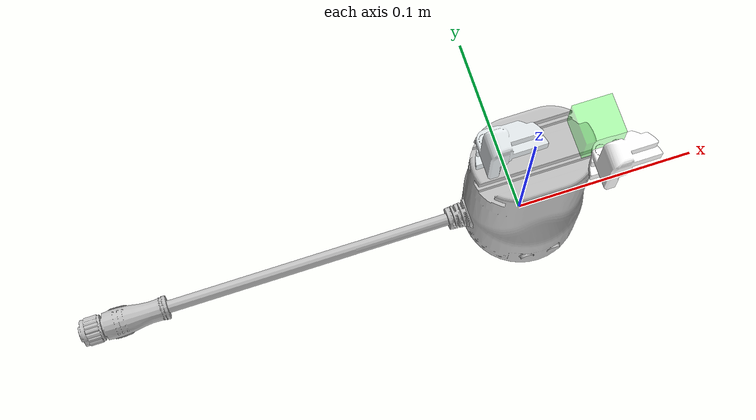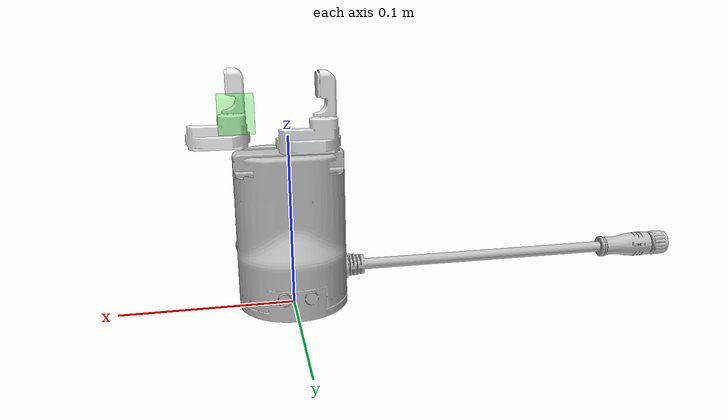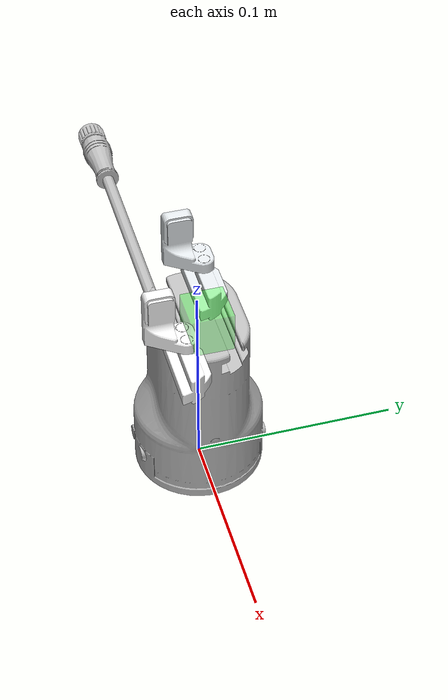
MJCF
<mujoco model="pgc50new">
  <compiler angle="radian"/>

  <option integrator="implicitfast"/>

  <asset>

    <material name="white" rgba="1 1 1 1"/>
    <material name="gray" rgba="0.753 0.753 0.753 1"/>
    <material name="black" rgba="0.149 0.149 0.149 1"/>

    <mesh name="base_link" content_type="model/stl" file="base_link.STL"/>
    <mesh name="finger1_link" content_type="model/stl" file="finger1_link.STL"/>
    <mesh name="finger2_link" content_type="model/stl" file="finger2_link.STL"/>

  </asset>

  <worldbody>
    <geom type="mesh" material="gray" mesh="base_link"/>
    <body name="finger1_link" pos="0.025043 -0.01085 0.099">
      <inertial pos="0.0030491 -0.0066024 0.0064209" quat="0.675095 0.0437776 -0.107674 0.728516" mass="0.014278" diaginertia="2.35597e-06 1.75554e-06 1.28399e-06"/>
      <joint name="finger1_joint" pos="0 0 0" axis="-1 0 0" type="slide" range="0 0.0185"/>
      <geom type="mesh" rgba="1 1 1 1" mesh="finger1_link"/>
      <geom type="box" size="0.01 0.01 0.01" pos="0.003 0.008 0.014" rgba="0 1 0 0.3" contype="1" conaffinity="1"/>
    </body>
    <body name="finger2_link" pos="-0.025043 0.01085 0.099">
      <inertial pos="0.0030491 -0.0066024 0.0064209" quat="0.675095 0.0437776 -0.107674 0.728516" mass="0.014278" diaginertia="2.35597e-06 1.75554e-06 1.28399e-06"/>
      <joint name="finger2_joint" pos="0 0 0" axis="1 0 0" type="slide"  range="0 0.0185"/>
      <geom type="mesh" rgba="0.898039 0.917647 0.929412 1" mesh="finger2_link"/>
    </body>
  </worldbody>

   <actuator>
        <!-- 新增夹爪执行器（MuJoCo使用equality实现联动） -->
        <position name="r_gripper" joint="finger1_joint" ctrllimited="true" ctrlrange="0 0.01875" kp="10000" kv="100"/>
    </actuator>

  <equality>
        <!-- 右爪联动约束 -->
        <joint name="r_gripper_sync" joint1="finger1_joint" joint2="finger2_joint" polycoef="0 1 0" solimp="0.95 0.99 0.001" solref="0.005 1"/>

  </equality>

  <contact>
    <exclude body1="world" body2="finger2_link"/>
    <exclude body1="world" body2="finger1_link"/>
  </contact>

</mujoco>
